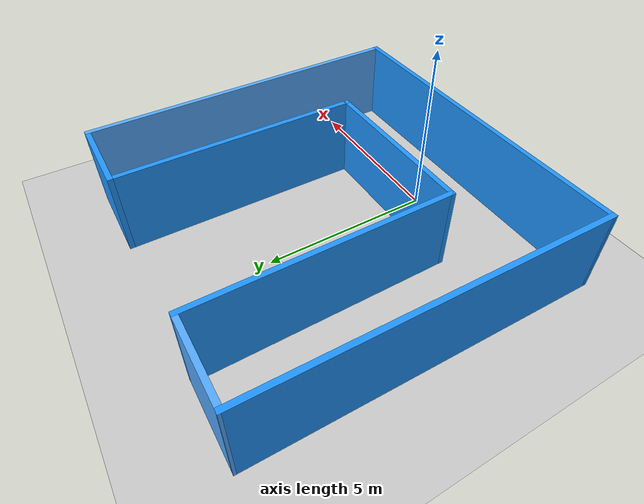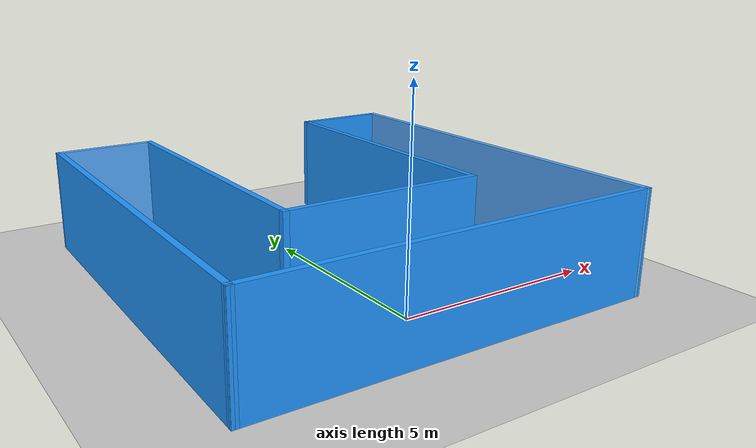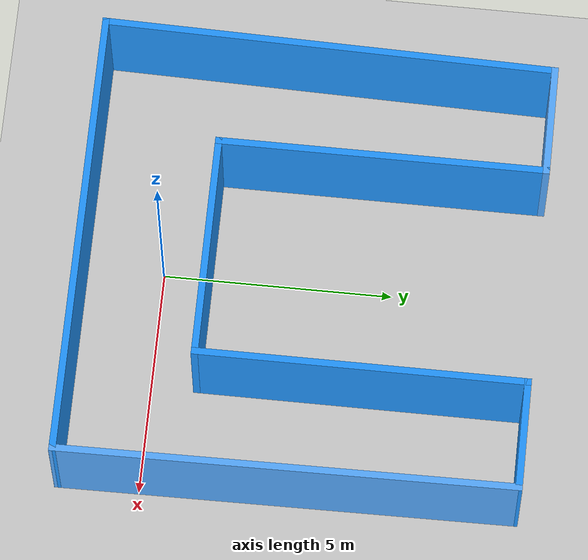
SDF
<sdf version="1.6">
 <world name="default">
  <light name="sun" type="directional">
   <pose>0 0 10 0 -0 0</pose>
   <diffuse>0.8 0.8 0.8 1</diffuse>
   <specular>0.2 0.2 0.2 1</specular>
   <attenuation>
    <range>1000</range>
    <constant>0.9</constant>
    <linear>0.01</linear>
    <quadratic>0.001</quadratic>
   </attenuation>
   <direction>-0.5 0.1 -0.9</direction>
  </light>
  <model name="ground_plane">
   <static>1</static>
   <link name="link">
    <collision name="collision">
     <geometry><plane><normal>0 0 1</normal><size>100 100</size></plane></geometry>
     <surface>
      <contact><collide_bitmask>65535</collide_bitmask></contact>
      <friction><ode><mu>100</mu><mu2>50</mu2></ode></friction>
     </surface>
    </collision>
    <visual name="visual">
     <cast_shadows>0</cast_shadows>
     <geometry><plane><normal>0 0 1</normal><size>100 100</size></plane></geometry>
     <material>
      <script><uri>file://media/materials/scripts/gazebo.material</uri><name>Gazebo/Grey</name></script>
     </material>
    </visual>
   </link>
  </model>
  <gravity>0 0 -9.8</gravity>
  <magnetic_field>6e-06 2.3e-05 -4.2e-05</magnetic_field>
  <atmosphere type="adiabatic"/>
  <physics name="default_physics" default="0" type="ode">
   <max_step_size>0.001</max_step_size>
   <real_time_factor>1</real_time_factor>
   <real_time_update_rate>1000</real_time_update_rate>
  </physics>
  <scene><ambient>0.4 0.4 0.4 1</ambient><background>0.7 0.7 0.7 1</background><shadows>1</shadows></scene>
  <spherical_coordinates>
   <surface_model>EARTH_WGS84</surface_model>
   <latitude_deg>0</latitude_deg>
   <longitude_deg>0</longitude_deg>
   <elevation>0</elevation>
   <heading_deg>0</heading_deg>
  </spherical_coordinates>
  <model name="ushape">
   <pose>0.063729 3.17215 0 0 -0 0</pose>
   <link name="Wall_2">
    <collision name="Wall_2_Collision">
     <geometry><box><size>10 0.15 2.5</size></box></geometry>
     <pose>0 0 1.25 0 -0 0</pose>
    </collision>
    <visual name="Wall_2_Visual">
     <pose>0 0 1.25 0 -0 0</pose>
     <geometry><box><size>10 0.15 2.5</size></box></geometry>
     <material>
      <script><uri>file://media/materials/scripts/gazebo.material</uri><name>Gazebo/Grey</name></script>
      <ambient>0.129412 0.592157 1 1</ambient>
     </material>
     <meta><layer>0</layer></meta>
    </visual>
    <pose>-4.82056 0.000686 0 0 0 -1.59194</pose>
   </link>
   <link name="Wall_3">
    <collision name="Wall_3_Collision">
     <geometry><box><size>10.0003 0.15 2.5</size></box></geometry>
     <pose>0 0 1.25 0 -0 0</pose>
    </collision>
    <visual name="Wall_3_Visual">
     <pose>0 0 1.25 0 -0 0</pose>
     <geometry><box><size>10.0003 0.15 2.5</size></box></geometry>
     <material>
      <script><uri>file://media/materials/scripts/gazebo.material</uri><name>Gazebo/Grey</name></script>
      <ambient>0.129412 0.592157 1 1</ambient>
     </material>
     <meta><layer>0</layer></meta>
    </visual>
    <pose>0.000437 -4.92431 0 0 0 -0.000224</pose>
   </link>
   <link name="Wall_4">
    <collision name="Wall_4_Collision">
     <geometry><box><size>10.0005 0.15 2.5</size></box></geometry>
     <pose>0 0 1.25 0 -0 0</pose>
    </collision>
    <visual name="Wall_4_Visual">
     <pose>0 0 1.25 0 -0 0</pose>
     <geometry><box><size>10.0005 0.15 2.5</size></box></geometry>
     <material>
      <script><uri>file://media/materials/scripts/gazebo.material</uri><name>Gazebo/Grey</name></script>
      <ambient>0.333333 0.666667 1 1</ambient>
     </material>
     <meta><layer>0</layer></meta>
    </visual>
    <pose>4.87958 -0.000416 0 0 -0 1.58014</pose>
   </link>
   <link name="Wall_5">
    <collision name="Wall_5_Collision">
     <geometry><box><size>2.5 0.15 2.5</size></box></geometry>
     <pose>0 0 1.25 0 -0 0</pose>
    </collision>
    <visual name="Wall_5_Visual">
     <pose>0 0 1.25 0 -0 0</pose>
     <geometry><box><size>2.5 0.15 2.5</size></box></geometry>
     <material>
      <script><uri>file://media/materials/scripts/gazebo.material</uri><name>Gazebo/Grey</name></script>
      <ambient>0.129412 0.592157 1 1</ambient>
     </material>
     <meta><layer>0</layer></meta>
    </visual>
    <pose>3.65858 4.92458 0 0 -0 3.14159</pose>
   </link>
   <link name="Wall_6">
    <collision name="Wall_6_Collision">
     <geometry><box><size>7.25 0.15 2.5</size></box></geometry>
     <pose>0 0 1.25 0 -0 0</pose>
    </collision>
    <visual name="Wall_6_Visual">
     <pose>0 0 1.25 0 -0 0</pose>
     <geometry><box><size>7.25 0.15 2.5</size></box></geometry>
     <material>
      <script><uri>file://media/materials/scripts/gazebo.material</uri><name>Gazebo/Grey</name></script>
      <ambient>0.129412 0.592157 1 1</ambient>
     </material>
     <meta><layer>0</layer></meta>
    </visual>
    <pose>2.48358 1.37458 0 0 0 -1.5708</pose>
   </link>
   <link name="Wall_7">
    <collision name="Wall_7_Collision">
     <geometry><box><size>5 0.15 2.5</size></box></geometry>
     <pose>0 0 1.25 0 -0 0</pose>
    </collision>
    <visual name="Wall_7_Visual">
     <pose>0 0 1.25 0 -0 0</pose>
     <geometry><box><size>5 0.15 2.5</size></box></geometry>
     <material>
      <script><uri>file://media/materials/scripts/gazebo.material</uri><name>Gazebo/Grey</name></script>
      <ambient>0.129412 0.592157 1 1</ambient>
     </material>
     <meta><layer>0</layer></meta>
    </visual>
    <pose>0.05858 -2.17542 0 0 -0 3.14159</pose>
   </link>
   <link name="Wall_8">
    <collision name="Wall_8_Collision">
     <geometry><box><size>7.25 0.15 2.5</size></box></geometry>
     <pose>0 0 1.25 0 -0 0</pose>
    </collision>
    <visual name="Wall_8_Visual">
     <pose>0 0 1.25 0 -0 0</pose>
     <geometry><box><size>7.25 0.15 2.5</size></box></geometry>
     <material>
      <script><uri>file://media/materials/scripts/gazebo.material</uri><name>Gazebo/Grey</name></script>
      <ambient>0.129412 0.592157 1 1</ambient>
     </material>
     <meta><layer>0</layer></meta>
    </visual>
    <pose>-2.36642 1.37458 0 0 -0 1.5708</pose>
   </link>
   <link name="Wall_9">
    <collision name="Wall_9_Collision">
     <geometry><box><size>2.5 0.15 2.5</size></box></geometry>
     <pose>0 0 1.25 0 -0 0</pose>
    </collision>
    <visual name="Wall_9_Visual">
     <pose>0 0 1.25 0 -0 0</pose>
     <geometry><box><size>2.5 0.15 2.5</size></box></geometry>
     <material>
      <script><uri>file://media/materials/scripts/gazebo.material</uri><name>Gazebo/Grey</name></script>
      <ambient>0.333333 0.666667 1 1</ambient>
     </material>
     <meta><layer>0</layer></meta>
    </visual>
    <pose>-3.54142 4.92458 0 0 -0 3.14159</pose>
   </link>
   <static>1</static>
  </model>
 </world>
</sdf>
